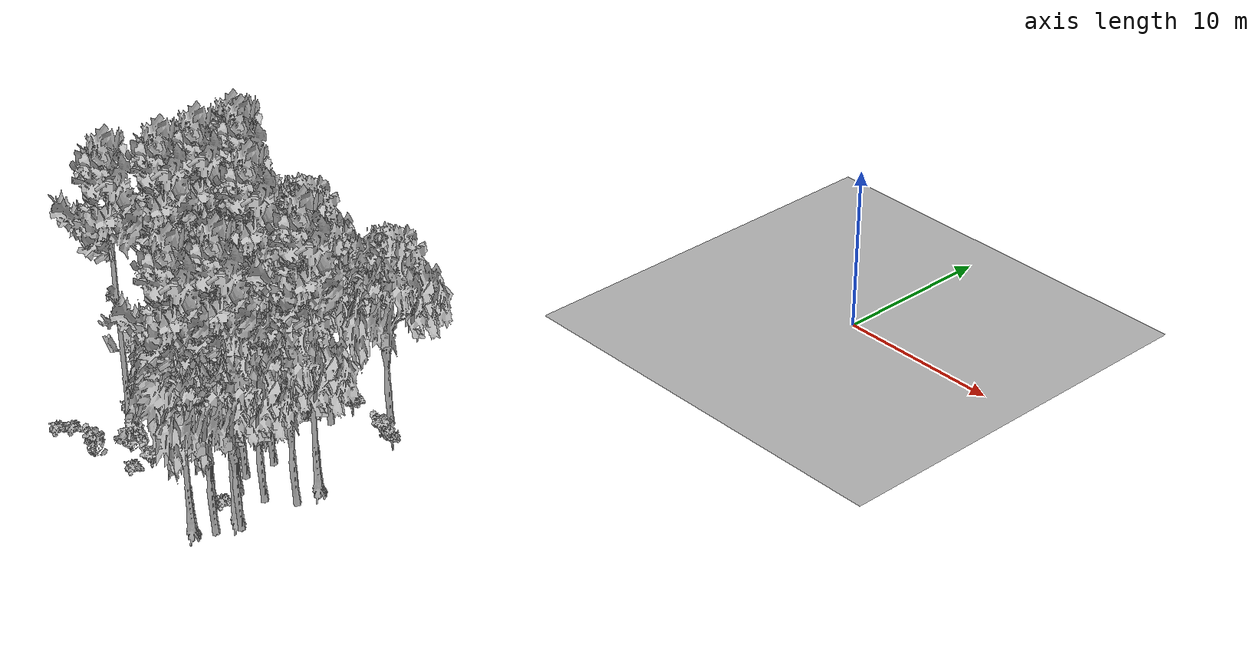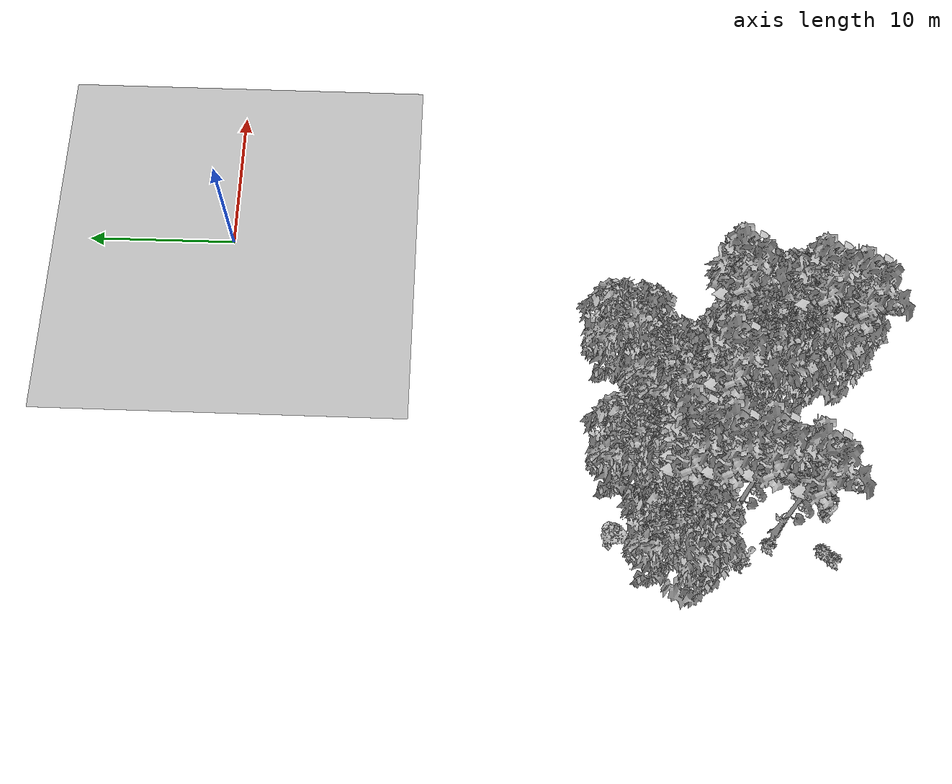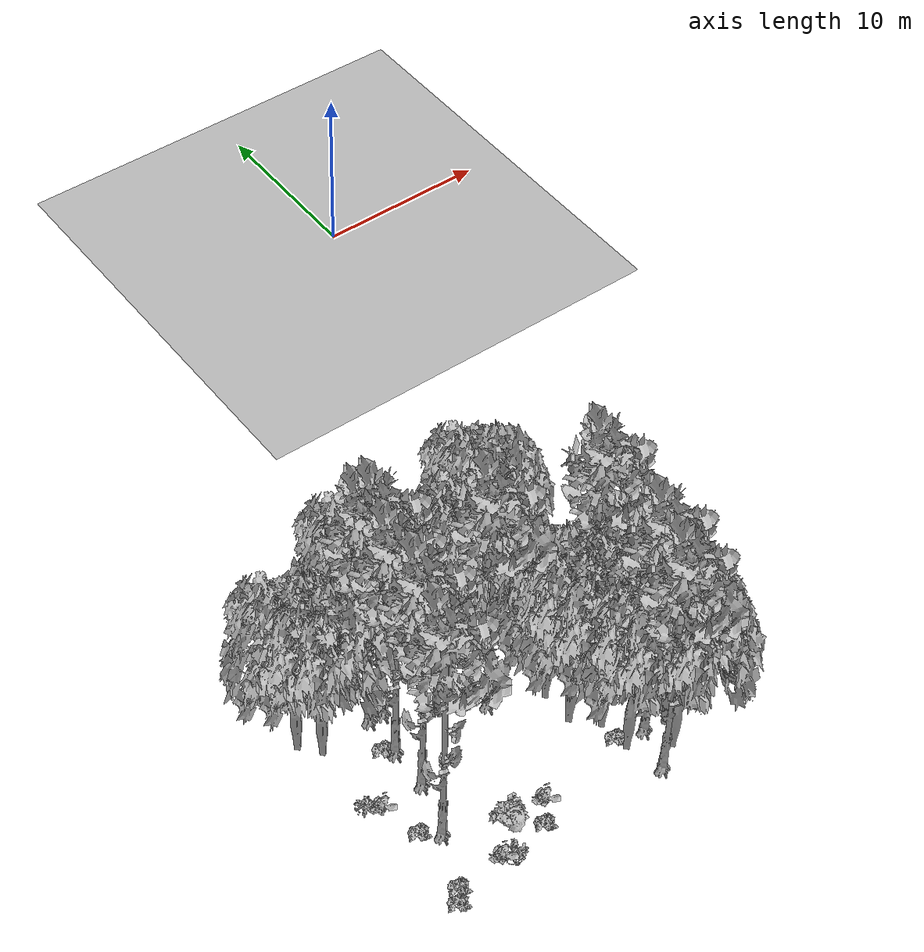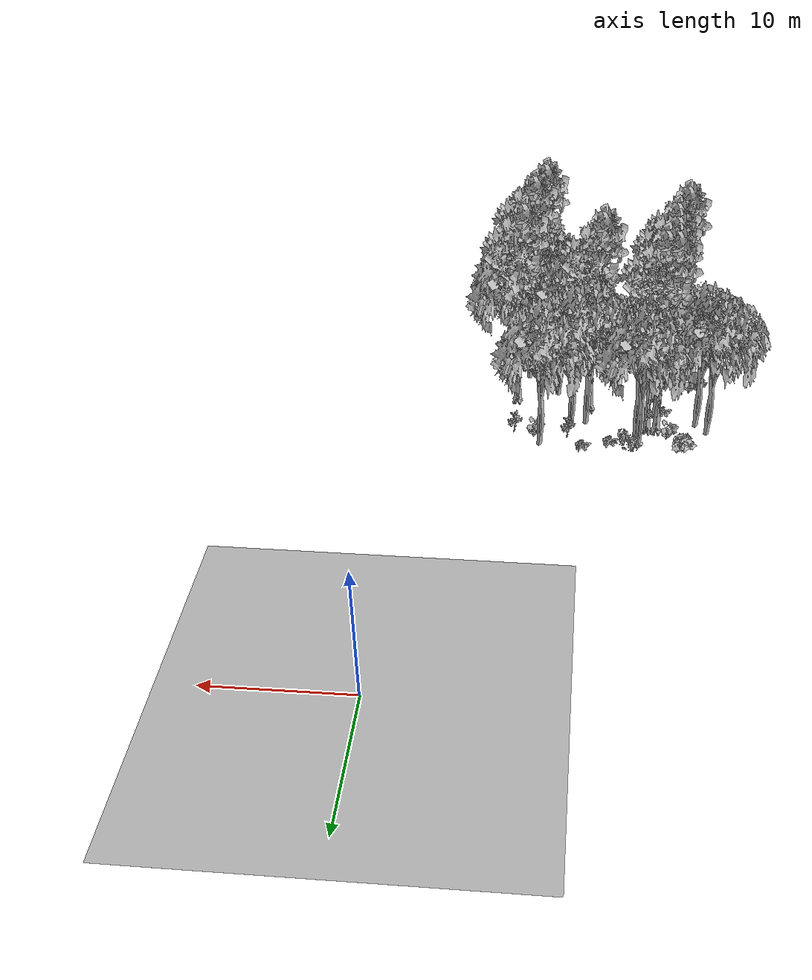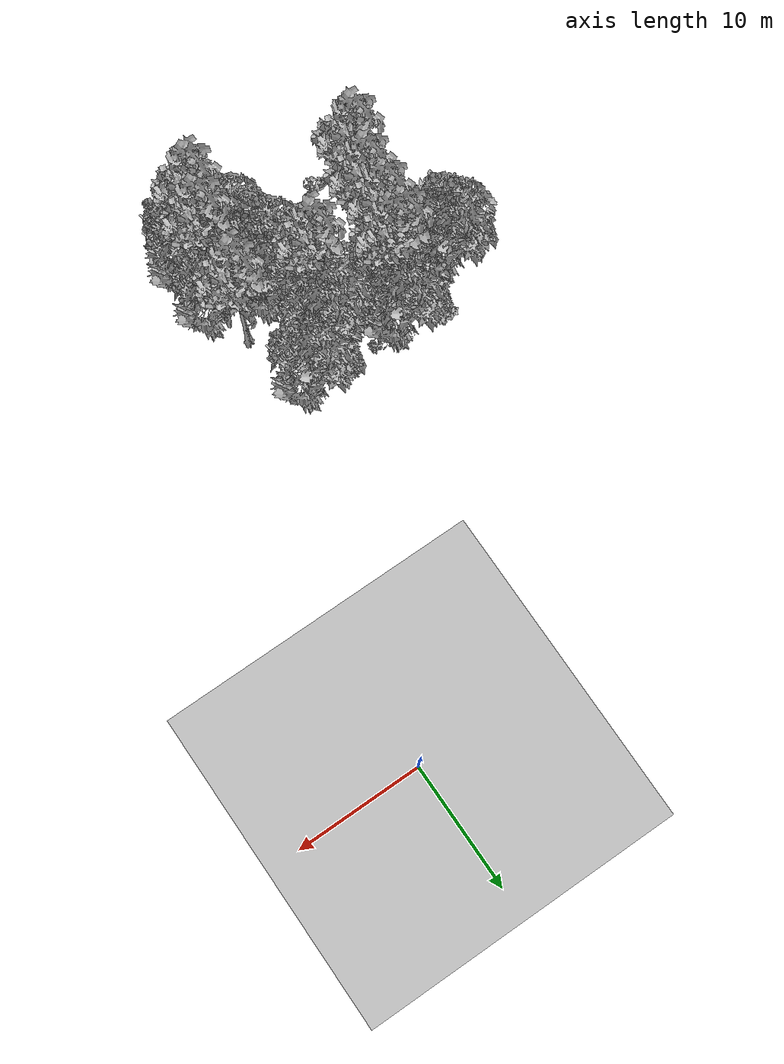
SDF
<sdf version="1.7">
 <world name="default">
  <model name="ground_plane">
   <static>1</static>
   <link name="link">
    <collision name="collision">
     <pose>-50 0 0 0 -0 0</pose>
     <geometry><plane><normal>0 0 1</normal><size>80 80</size></plane></geometry>
     <surface><contact><ode><min_depth>0.01</min_depth><max_vel>0</max_vel></ode></contact></surface>
    </collision>
    <visual name="grass">
     <cast_shadows>0</cast_shadows>
     <geometry>
      <mesh>
       <scale>0.46714285714285714 0.46714285714285714 0.1</scale>
       <uri>file://grass_plane/meshes/grass_plane.dae</uri>
      </mesh>
     </geometry>
    </visual>
   </link>
  </model>
  <model name="Tree 3">
   <static>1</static>
   <pose>-10.805055502668331 -33.086612007821934 0 1.57079 -0 0</pose>
   <link name="link">
    <collision name="collision">
     <geometry><mesh><scale>3.5 5 3.5</scale><uri>model://tree_2/meshes/tree_2.obj</uri></mesh></geometry>
    </collision>
    <visual name="visual">
     <geometry><mesh><scale>3.5 5 3.5</scale><uri>model://tree_2/meshes/tree_2.obj</uri></mesh></geometry>
    </visual>
   </link>
  </model>
  <model name="Tree 35">
   <static>1</static>
   <pose>-9.594605800499885 -26.206955455587106 0 1.57079 -0 0</pose>
   <link name="link">
    <collision name="collision">
     <geometry><mesh><scale>3.5 5 3.5</scale><uri>model://tree_2/meshes/tree_2.obj</uri></mesh></geometry>
    </collision>
    <visual name="visual">
     <geometry><mesh><scale>3.5 5 3.5</scale><uri>model://tree_2/meshes/tree_2.obj</uri></mesh></geometry>
    </visual>
   </link>
  </model>
  <model name="Tree 88">
   <static>1</static>
   <pose>-9.679437065581023 -36.02381968228307 0 1.57079 -0 0</pose>
   <link name="link">
    <collision name="collision">
     <geometry><mesh><scale>3.5 5 3.5</scale><uri>model://tree_2/meshes/tree_2.obj</uri></mesh></geometry>
    </collision>
    <visual name="visual">
     <geometry><mesh><scale>3.5 5 3.5</scale><uri>model://tree_2/meshes/tree_2.obj</uri></mesh></geometry>
    </visual>
   </link>
  </model>
  <model name="Tree 93">
   <static>1</static>
   <pose>-7.985229253930097 -37.32242654535726 0 1.57079 -0 0</pose>
   <link name="link">
    <collision name="collision">
     <geometry><mesh><scale>3.5 5 3.5</scale><uri>model://tree_9/meshes/tree_9.obj</uri></mesh></geometry>
    </collision>
    <visual name="visual">
     <geometry><mesh><scale>3.5 5 3.5</scale><uri>model://tree_9/meshes/tree_9.obj</uri></mesh></geometry>
    </visual>
   </link>
  </model>
  <model name="Tree 95">
   <static>1</static>
   <pose>-7.660575979910835 -38.894804881229035 0 1.57079 -0 0</pose>
   <link name="link">
    <collision name="collision">
     <geometry><mesh><scale>3.5 5 3.5</scale><uri>model://tree_2/meshes/tree_2.obj</uri></mesh></geometry>
    </collision>
    <visual name="visual">
     <geometry><mesh><scale>3.5 5 3.5</scale><uri>model://tree_2/meshes/tree_2.obj</uri></mesh></geometry>
    </visual>
   </link>
  </model>
  <model name="Tree 113">
   <static>1</static>
   <pose>-18.591621041814697 -33.59482510219426 0 1.57079 -0 0</pose>
   <link name="link">
    <collision name="collision">
     <geometry><mesh><scale>3.5 5 3.5</scale><uri>model://tree_9/meshes/tree_9.obj</uri></mesh></geometry>
    </collision>
    <visual name="visual">
     <geometry><mesh><scale>3.5 5 3.5</scale><uri>model://tree_9/meshes/tree_9.obj</uri></mesh></geometry>
    </visual>
   </link>
  </model>
  <model name="Tree 127">
   <static>1</static>
   <pose>-10.767612922091278 -34.875757036888764 0 1.57079 -0 0</pose>
   <link name="link">
    <collision name="collision">
     <geometry><mesh><scale>3.5 5 3.5</scale><uri>model://tree_2/meshes/tree_2.obj</uri></mesh></geometry>
    </collision>
    <visual name="visual">
     <geometry><mesh><scale>3.5 5 3.5</scale><uri>model://tree_2/meshes/tree_2.obj</uri></mesh></geometry>
    </visual>
   </link>
  </model>
  <model name="Tree 138">
   <static>1</static>
   <pose>-7.448730827811257 -32.520922247976564 0 1.57079 -0 0</pose>
   <link name="link">
    <collision name="collision">
     <geometry><mesh><scale>3.5 5 3.5</scale><uri>model://tree_9/meshes/tree_9.obj</uri></mesh></geometry>
    </collision>
    <visual name="visual">
     <geometry><mesh><scale>3.5 5 3.5</scale><uri>model://tree_9/meshes/tree_9.obj</uri></mesh></geometry>
    </visual>
   </link>
  </model>
  <model name="Tree 176">
   <static>1</static>
   <pose>-7.016984603204989 -34.29376382398473 0 1.57079 -0 0</pose>
   <link name="link">
    <collision name="collision">
     <geometry><mesh><scale>3.5 5 3.5</scale><uri>model://tree_2/meshes/tree_2.obj</uri></mesh></geometry>
    </collision>
    <visual name="visual">
     <geometry><mesh><scale>3.5 5 3.5</scale><uri>model://tree_2/meshes/tree_2.obj</uri></mesh></geometry>
    </visual>
   </link>
  </model>
  <model name="Tree 189">
   <static>1</static>
   <pose>-19.48816622233654 -36.36752313395419 0 1.57079 -0 0</pose>
   <link name="link">
    <collision name="collision">
     <geometry><mesh><scale>3.5 5 3.5</scale><uri>model://tree_9/meshes/tree_9.obj</uri></mesh></geometry>
    </collision>
    <visual name="visual">
     <geometry><mesh><scale>3.5 5 3.5</scale><uri>model://tree_9/meshes/tree_9.obj</uri></mesh></geometry>
    </visual>
   </link>
  </model>
  <model name="Tree 271">
   <static>1</static>
   <pose>-18.520587450415963 -31.378179064928922 0 1.57079 -0 0</pose>
   <link name="link">
    <collision name="collision">
     <geometry><mesh><scale>3.5 5 3.5</scale><uri>model://tree_9/meshes/tree_9.obj</uri></mesh></geometry>
    </collision>
    <visual name="visual">
     <geometry><mesh><scale>3.5 5 3.5</scale><uri>model://tree_9/meshes/tree_9.obj</uri></mesh></geometry>
    </visual>
   </link>
  </model>
  <model name="Tree 273">
   <static>1</static>
   <pose>-21.525568079198266 -29.511180423750893 0 1.57079 -0 0</pose>
   <link name="link">
    <collision name="collision">
     <geometry><mesh><scale>3.5 5 3.5</scale><uri>model://tree_2/meshes/tree_2.obj</uri></mesh></geometry>
    </collision>
    <visual name="visual">
     <geometry><mesh><scale>3.5 5 3.5</scale><uri>model://tree_2/meshes/tree_2.obj</uri></mesh></geometry>
    </visual>
   </link>
  </model>
  <model name="Tree 297">
   <static>1</static>
   <pose>-8.736487918749638 -39.53866315267982 0 1.57079 -0 0</pose>
   <link name="link">
    <collision name="collision">
     <geometry><mesh><scale>3.5 5 3.5</scale><uri>model://tree_9/meshes/tree_9.obj</uri></mesh></geometry>
    </collision>
    <visual name="visual">
     <geometry><mesh><scale>3.5 5 3.5</scale><uri>model://tree_9/meshes/tree_9.obj</uri></mesh></geometry>
    </visual>
   </link>
  </model>
  <model name="Tree 326">
   <static>1</static>
   <pose>-22.327469304035986 -28.543031832744667 0 1.57079 -0 0</pose>
   <link name="link">
    <collision name="collision">
     <geometry><mesh><scale>3.5 5 3.5</scale><uri>model://tree_2/meshes/tree_2.obj</uri></mesh></geometry>
    </collision>
    <visual name="visual">
     <geometry><mesh><scale>3.5 5 3.5</scale><uri>model://tree_2/meshes/tree_2.obj</uri></mesh></geometry>
    </visual>
   </link>
  </model>
  <model name="Tree 358">
   <static>1</static>
   <pose>-13.056190649271706 -29.266170366580802 0 1.57079 -0 0</pose>
   <link name="link">
    <collision name="collision">
     <geometry><mesh><scale>3.5 5 3.5</scale><uri>model://tree_2/meshes/tree_2.obj</uri></mesh></geometry>
    </collision>
    <visual name="visual">
     <geometry><mesh><scale>3.5 5 3.5</scale><uri>model://tree_2/meshes/tree_2.obj</uri></mesh></geometry>
    </visual>
   </link>
  </model>
  <model name="Tree 359">
   <static>1</static>
   <pose>-9.531834748792512 -37.725240264541576 0 1.57079 -0 0</pose>
   <link name="link">
    <collision name="collision">
     <geometry><mesh><scale>3.5 5 3.5</scale><uri>model://tree_2/meshes/tree_2.obj</uri></mesh></geometry>
    </collision>
    <visual name="visual">
     <geometry><mesh><scale>3.5 5 3.5</scale><uri>model://tree_2/meshes/tree_2.obj</uri></mesh></geometry>
    </visual>
   </link>
  </model>
  <model name="Tree 374">
   <static>1</static>
   <pose>-17.05193277850883 -26.42393623849714 0 1.57079 -0 0</pose>
   <link name="link">
    <collision name="collision">
     <geometry><mesh><scale>3.5 5 3.5</scale><uri>model://tree_2/meshes/tree_2.obj</uri></mesh></geometry>
    </collision>
    <visual name="visual">
     <geometry><mesh><scale>3.5 5 3.5</scale><uri>model://tree_2/meshes/tree_2.obj</uri></mesh></geometry>
    </visual>
   </link>
  </model>
  <model name="Tree 377">
   <static>1</static>
   <pose>-8.381149138614056 -35.3736660468919 0 1.57079 -0 0</pose>
   <link name="link">
    <collision name="collision">
     <geometry><mesh><scale>3.5 5 3.5</scale><uri>model://tree_2/meshes/tree_2.obj</uri></mesh></geometry>
    </collision>
    <visual name="visual">
     <geometry><mesh><scale>3.5 5 3.5</scale><uri>model://tree_2/meshes/tree_2.obj</uri></mesh></geometry>
    </visual>
   </link>
  </model>
  <model name="Tree 438">
   <static>1</static>
   <pose>-17.667735139357834 -29.165443996455956 0 1.57079 -0 0</pose>
   <link name="link">
    <collision name="collision">
     <geometry><mesh><scale>3.5 5 3.5</scale><uri>model://tree_9/meshes/tree_9.obj</uri></mesh></geometry>
    </collision>
    <visual name="visual">
     <geometry><mesh><scale>3.5 5 3.5</scale><uri>model://tree_9/meshes/tree_9.obj</uri></mesh></geometry>
    </visual>
   </link>
  </model>
  <model name="Tree 504">
   <static>1</static>
   <pose>-16.87247542223804 -27.85068960142184 0 1.57079 -0 0</pose>
   <link name="link">
    <collision name="collision">
     <geometry><mesh><scale>3.5 5 3.5</scale><uri>model://tree_2/meshes/tree_2.obj</uri></mesh></geometry>
    </collision>
    <visual name="visual">
     <geometry><mesh><scale>3.5 5 3.5</scale><uri>model://tree_2/meshes/tree_2.obj</uri></mesh></geometry>
    </visual>
   </link>
  </model>
  <model name="Tree 534">
   <static>1</static>
   <pose>-13.221263148521214 -31.724870361553215 0 1.57079 -0 0</pose>
   <link name="link">
    <collision name="collision">
     <geometry><mesh><scale>3.5 5 3.5</scale><uri>model://tree_9/meshes/tree_9.obj</uri></mesh></geometry>
    </collision>
    <visual name="visual">
     <geometry><mesh><scale>3.5 5 3.5</scale><uri>model://tree_9/meshes/tree_9.obj</uri></mesh></geometry>
    </visual>
   </link>
  </model>
  <model name="Tree 585">
   <static>1</static>
   <pose>-18.433920918712104 -29.134340661134857 0 1.57079 -0 0</pose>
   <link name="link">
    <collision name="collision">
     <geometry><mesh><scale>3.5 5 3.5</scale><uri>model://tree_9/meshes/tree_9.obj</uri></mesh></geometry>
    </collision>
    <visual name="visual">
     <geometry><mesh><scale>3.5 5 3.5</scale><uri>model://tree_9/meshes/tree_9.obj</uri></mesh></geometry>
    </visual>
   </link>
  </model>
  <model name="Tree 588">
   <static>1</static>
   <pose>-11.894267981839015 -28.54097452917216 0 1.57079 -0 0</pose>
   <link name="link">
    <collision name="collision">
     <geometry><mesh><scale>3.5 5 3.5</scale><uri>model://tree_2/meshes/tree_2.obj</uri></mesh></geometry>
    </collision>
    <visual name="visual">
     <geometry><mesh><scale>3.5 5 3.5</scale><uri>model://tree_2/meshes/tree_2.obj</uri></mesh></geometry>
    </visual>
   </link>
  </model>
  <model name="Tree 630">
   <static>1</static>
   <pose>-7.120927017214381 -37.69095355784039 0 1.57079 -0 0</pose>
   <link name="link">
    <collision name="collision">
     <geometry><mesh><scale>3.5 5 3.5</scale><uri>model://tree_2/meshes/tree_2.obj</uri></mesh></geometry>
    </collision>
    <visual name="visual">
     <geometry><mesh><scale>3.5 5 3.5</scale><uri>model://tree_2/meshes/tree_2.obj</uri></mesh></geometry>
    </visual>
   </link>
  </model>
  <model name="Bush 18">
   <static>1</static>
   <pose>-15.364783533580123 -38.85960332369414 0 1.57079 -0 0</pose>
   <link name="link">
    <collision name="collision">
     <geometry><mesh><scale>2 2 2</scale><uri>model://bush_2/meshes/bush_2.obj</uri></mesh></geometry>
     <surface><contact><collide_without_contact>false</collide_without_contact></contact></surface>
    </collision>
    <visual name="visual">
     <geometry><mesh><scale>2 2 2</scale><uri>model://bush_2/meshes/bush_2.obj</uri></mesh></geometry>
    </visual>
   </link>
  </model>
  <model name="Bush 31">
   <static>1</static>
   <pose>-16.51669172707639 -25.842214691747856 0 1.57079 -0 0</pose>
   <link name="link">
    <collision name="collision">
     <geometry><mesh><scale>2 2 2</scale><uri>model://bush_4/meshes/bush_4.obj</uri></mesh></geometry>
     <surface><contact><collide_without_contact>false</collide_without_contact></contact></surface>
    </collision>
    <visual name="visual">
     <geometry><mesh><scale>2 2 2</scale><uri>model://bush_4/meshes/bush_4.obj</uri></mesh></geometry>
    </visual>
   </link>
  </model>
  <model name="Bush 43">
   <static>1</static>
   <pose>-20.71090788205303 -39.25431787652531 0 1.57079 -0 0</pose>
   <link name="link">
    <collision name="collision">
     <geometry><mesh><scale>2 2 2</scale><uri>model://bush_2/meshes/bush_2.obj</uri></mesh></geometry>
     <surface><contact><collide_without_contact>false</collide_without_contact></contact></surface>
    </collision>
    <visual name="visual">
     <geometry><mesh><scale>2 2 2</scale><uri>model://bush_2/meshes/bush_2.obj</uri></mesh></geometry>
    </visual>
   </link>
  </model>
  <model name="Bush 44">
   <static>1</static>
   <pose>-16.75622948630485 -38.0766220534465 0 1.57079 -0 0</pose>
   <link name="link">
    <collision name="collision">
     <geometry><mesh><scale>2 2 2</scale><uri>model://bush_1/meshes/bush_1.obj</uri></mesh></geometry>
     <surface><contact><collide_without_contact>false</collide_without_contact></contact></surface>
    </collision>
    <visual name="visual">
     <geometry><mesh><scale>2 2 2</scale><uri>model://bush_1/meshes/bush_1.obj</uri></mesh></geometry>
    </visual>
   </link>
  </model>
  <model name="Bush 47">
   <static>1</static>
   <pose>-9.015524415444233 -27.14471769705729 0 1.57079 -0 0</pose>
   <link name="link">
    <collision name="collision">
     <geometry><mesh><scale>2 2 2</scale><uri>model://bush_0/meshes/bush_0.obj</uri></mesh></geometry>
     <surface><contact><collide_without_contact>false</collide_without_contact></contact></surface>
    </collision>
    <visual name="visual">
     <geometry><mesh><scale>2 2 2</scale><uri>model://bush_0/meshes/bush_0.obj</uri></mesh></geometry>
    </visual>
   </link>
  </model>
  <model name="Bush 50">
   <static>1</static>
   <pose>-19.172193394653952 -27.542027011553365 0 1.57079 -0 0</pose>
   <link name="link">
    <collision name="collision">
     <geometry><mesh><scale>2 2 2</scale><uri>model://bush_0/meshes/bush_0.obj</uri></mesh></geometry>
     <surface><contact><collide_without_contact>false</collide_without_contact></contact></surface>
    </collision>
    <visual name="visual">
     <geometry><mesh><scale>2 2 2</scale><uri>model://bush_0/meshes/bush_0.obj</uri></mesh></geometry>
    </visual>
   </link>
  </model>
  <model name="Bush 114">
   <static>1</static>
   <pose>-17.63077914235381 -28.96295090907114 0 1.57079 -0 0</pose>
   <link name="link">
    <collision name="collision">
     <geometry><mesh><scale>2 2 2</scale><uri>model://bush_5/meshes/bush_5.obj</uri></mesh></geometry>
     <surface><contact><collide_without_contact>false</collide_without_contact></contact></surface>
    </collision>
    <visual name="visual">
     <geometry><mesh><scale>2 2 2</scale><uri>model://bush_5/meshes/bush_5.obj</uri></mesh></geometry>
    </visual>
   </link>
  </model>
  <model name="Bush 121">
   <static>1</static>
   <pose>-7.499732610240848 -27.583420346218794 0 1.57079 -0 0</pose>
   <link name="link">
    <collision name="collision">
     <geometry><mesh><scale>2 2 2</scale><uri>model://bush_5/meshes/bush_5.obj</uri></mesh></geometry>
     <surface><contact><collide_without_contact>false</collide_without_contact></contact></surface>
    </collision>
    <visual name="visual">
     <geometry><mesh><scale>2 2 2</scale><uri>model://bush_5/meshes/bush_5.obj</uri></mesh></geometry>
    </visual>
   </link>
  </model>
  <model name="Bush 154">
   <static>1</static>
   <pose>-14.870954856840783 -26.914738736595787 0 1.57079 -0 0</pose>
   <link name="link">
    <collision name="collision">
     <geometry><mesh><scale>2 2 2</scale><uri>model://bush_2/meshes/bush_2.obj</uri></mesh></geometry>
     <surface><contact><collide_without_contact>false</collide_without_contact></contact></surface>
    </collision>
    <visual name="visual">
     <geometry><mesh><scale>2 2 2</scale><uri>model://bush_2/meshes/bush_2.obj</uri></mesh></geometry>
    </visual>
   </link>
  </model>
  <model name="Bush 196">
   <static>1</static>
   <pose>-19.086276743866424 -31.117675622694854 0 1.57079 -0 0</pose>
   <link name="link">
    <collision name="collision">
     <geometry><mesh><scale>2 2 2</scale><uri>model://bush_2/meshes/bush_2.obj</uri></mesh></geometry>
     <surface><contact><collide_without_contact>false</collide_without_contact></contact></surface>
    </collision>
    <visual name="visual">
     <geometry><mesh><scale>2 2 2</scale><uri>model://bush_2/meshes/bush_2.obj</uri></mesh></geometry>
    </visual>
   </link>
  </model>
  <model name="Bush 212">
   <static>1</static>
   <pose>-15.839616172883076 -26.549941310406837 0 1.57079 -0 0</pose>
   <link name="link">
    <collision name="collision">
     <geometry><mesh><scale>2 2 2</scale><uri>model://bush_4/meshes/bush_4.obj</uri></mesh></geometry>
     <surface><contact><collide_without_contact>false</collide_without_contact></contact></surface>
    </collision>
    <visual name="visual">
     <geometry><mesh><scale>2 2 2</scale><uri>model://bush_4/meshes/bush_4.obj</uri></mesh></geometry>
    </visual>
   </link>
  </model>
  <model name="Bush 239">
   <static>1</static>
   <pose>-18.261509672631774 -39.358415399188836 0 1.57079 -0 0</pose>
   <link name="link">
    <collision name="collision">
     <geometry><mesh><scale>2 2 2</scale><uri>model://bush_0/meshes/bush_0.obj</uri></mesh></geometry>
     <surface><contact><collide_without_contact>false</collide_without_contact></contact></surface>
    </collision>
    <visual name="visual">
     <geometry><mesh><scale>2 2 2</scale><uri>model://bush_0/meshes/bush_0.obj</uri></mesh></geometry>
    </visual>
   </link>
  </model>
  <model name="Bush 251">
   <static>1</static>
   <pose>-12.779433865661215 -26.204948038280634 0 1.57079 -0 0</pose>
   <link name="link">
    <collision name="collision">
     <geometry><mesh><scale>2 2 2</scale><uri>model://bush_2/meshes/bush_2.obj</uri></mesh></geometry>
     <surface><contact><collide_without_contact>false</collide_without_contact></contact></surface>
    </collision>
    <visual name="visual">
     <geometry><mesh><scale>2 2 2</scale><uri>model://bush_2/meshes/bush_2.obj</uri></mesh></geometry>
    </visual>
   </link>
  </model>
  <model name="Bush 280">
   <static>1</static>
   <pose>-17.7333212200409 -39.72765284793482 0 1.57079 -0 0</pose>
   <link name="link">
    <collision name="collision">
     <geometry><mesh><scale>2 2 2</scale><uri>model://bush_4/meshes/bush_4.obj</uri></mesh></geometry>
     <surface><contact><collide_without_contact>false</collide_without_contact></contact></surface>
    </collision>
    <visual name="visual">
     <geometry><mesh><scale>2 2 2</scale><uri>model://bush_4/meshes/bush_4.obj</uri></mesh></geometry>
    </visual>
   </link>
  </model>
  <model name="Bush 286">
   <static>1</static>
   <pose>-20.28851240307473 -26.04675212683371 0 1.57079 -0 0</pose>
   <link name="link">
    <collision name="collision">
     <geometry><mesh><scale>2 2 2</scale><uri>model://bush_1/meshes/bush_1.obj</uri></mesh></geometry>
     <surface><contact><collide_without_contact>false</collide_without_contact></contact></surface>
    </collision>
    <visual name="visual">
     <geometry><mesh><scale>2 2 2</scale><uri>model://bush_1/meshes/bush_1.obj</uri></mesh></geometry>
    </visual>
   </link>
  </model>
  <model name="Bush 345">
   <static>1</static>
   <pose>-9.615152548957184 -37.08215058783638 0 1.57079 -0 0</pose>
   <link name="link">
    <collision name="collision">
     <geometry><mesh><scale>2 2 2</scale><uri>model://bush_2/meshes/bush_2.obj</uri></mesh></geometry>
     <surface><contact><collide_without_contact>false</collide_without_contact></contact></surface>
    </collision>
    <visual name="visual">
     <geometry><mesh><scale>2 2 2</scale><uri>model://bush_2/meshes/bush_2.obj</uri></mesh></geometry>
    </visual>
   </link>
  </model>
  <model name="Bush 388">
   <static>1</static>
   <pose>-21.180510042279355 -34.00004727949309 0 1.57079 -0 0</pose>
   <link name="link">
    <collision name="collision">
     <geometry><mesh><scale>2 2 2</scale><uri>model://bush_0/meshes/bush_0.obj</uri></mesh></geometry>
     <surface><contact><collide_without_contact>false</collide_without_contact></contact></surface>
    </collision>
    <visual name="visual">
     <geometry><mesh><scale>2 2 2</scale><uri>model://bush_0/meshes/bush_0.obj</uri></mesh></geometry>
    </visual>
   </link>
  </model>
  <model name="Bush 413">
   <static>1</static>
   <pose>-21.228250806232662 -39.905461178747956 0 1.57079 -0 0</pose>
   <link name="link">
    <collision name="collision">
     <geometry><mesh><scale>2 2 2</scale><uri>model://bush_2/meshes/bush_2.obj</uri></mesh></geometry>
     <surface><contact><collide_without_contact>false</collide_without_contact></contact></surface>
    </collision>
    <visual name="visual">
     <geometry><mesh><scale>2 2 2</scale><uri>model://bush_2/meshes/bush_2.obj</uri></mesh></geometry>
    </visual>
   </link>
  </model>
  <model name="Bush 499">
   <static>1</static>
   <pose>-21.948990554284492 -33.61134994983569 0 1.57079 -0 0</pose>
   <link name="link">
    <collision name="collision">
     <geometry><mesh><scale>2 2 2</scale><uri>model://bush_5/meshes/bush_5.obj</uri></mesh></geometry>
     <surface><contact><collide_without_contact>false</collide_without_contact></contact></surface>
    </collision>
    <visual name="visual">
     <geometry><mesh><scale>2 2 2</scale><uri>model://bush_5/meshes/bush_5.obj</uri></mesh></geometry>
    </visual>
   </link>
  </model>
  <model name="Bush 509">
   <static>1</static>
   <pose>-20.45186753837531 -35.85911971833948 0 1.57079 -0 0</pose>
   <link name="link">
    <collision name="collision">
     <geometry><mesh><scale>2 2 2</scale><uri>model://bush_2/meshes/bush_2.obj</uri></mesh></geometry>
     <surface><contact><collide_without_contact>false</collide_without_contact></contact></surface>
    </collision>
    <visual name="visual">
     <geometry><mesh><scale>2 2 2</scale><uri>model://bush_2/meshes/bush_2.obj</uri></mesh></geometry>
    </visual>
   </link>
  </model>
  <model name="Bush 525">
   <static>1</static>
   <pose>-11.572828988956061 -27.194372823714268 0 1.57079 -0 0</pose>
   <link name="link">
    <collision name="collision">
     <geometry><mesh><scale>2 2 2</scale><uri>model://bush_5/meshes/bush_5.obj</uri></mesh></geometry>
     <surface><contact><collide_without_contact>false</collide_without_contact></contact></surface>
    </collision>
    <visual name="visual">
     <geometry><mesh><scale>2 2 2</scale><uri>model://bush_5/meshes/bush_5.obj</uri></mesh></geometry>
    </visual>
   </link>
  </model>
  <model name="Bush 564">
   <static>1</static>
   <pose>-14.737381204755767 -38.05087885224019 0 1.57079 -0 0</pose>
   <link name="link">
    <collision name="collision">
     <geometry><mesh><scale>2 2 2</scale><uri>model://bush_0/meshes/bush_0.obj</uri></mesh></geometry>
     <surface><contact><collide_without_contact>false</collide_without_contact></contact></surface>
    </collision>
    <visual name="visual">
     <geometry><mesh><scale>2 2 2</scale><uri>model://bush_0/meshes/bush_0.obj</uri></mesh></geometry>
    </visual>
   </link>
  </model>
 </world>
</sdf>
